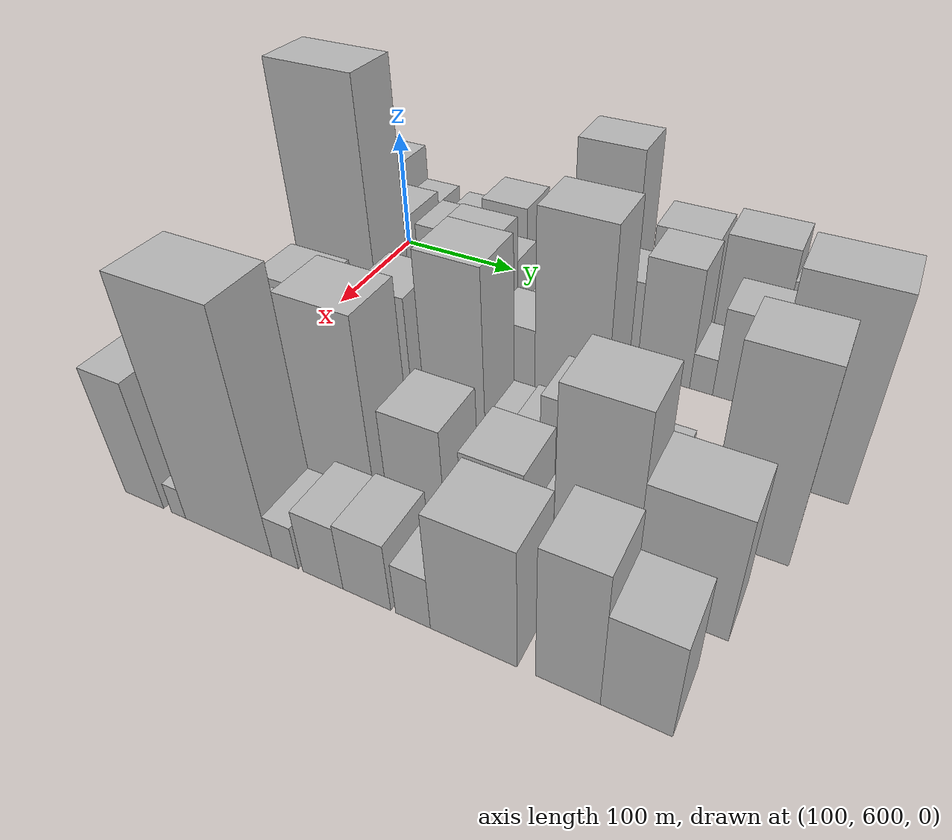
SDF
<sdf version="1.6">
 <world name="default">
  <model name="building_41">
   <static>1</static>
   <pose>100.0000 587.2053 0 0.000000 0.000000 0.000000</pose>
   <link name="link">
    <pose>0 0 42.00 0 0 0</pose>
    <collision name="collision"><geometry><box><size>40.0000 46.4006 84.0000</size></box></geometry></collision>
    <visual name="visual">
     <cast_shadows>0</cast_shadows>
     <geometry><box><size>40.0000 46.4006 84.0000</size></box></geometry>
     <material>
      <script>
       <uri>model://HANNAS_wall/materials/scripts</uri>
       <uri>model://HANNAS_wall/materials/textures</uri>
       <name>vrc/HANNAS_wall</name>
      </script>
     </material>
    </visual>
   </link>
  </model>
  <model name="building_42">
   <static>1</static>
   <pose>100.0000 625.5312 0 0.000000 0.000000 0.000000</pose>
   <link name="link">
    <pose>0 0 27.00 0 0 0</pose>
    <collision name="collision"><geometry><box><size>40.0000 30.2512 54.0000</size></box></geometry></collision>
    <visual name="visual">
     <cast_shadows>0</cast_shadows>
     <geometry><box><size>40.0000 30.2512 54.0000</size></box></geometry>
     <material>
      <script>
       <uri>model://HANNAS_wall/materials/scripts</uri>
       <uri>model://HANNAS_wall/materials/textures</uri>
       <name>vrc/HANNAS_wall</name>
      </script>
     </material>
    </visual>
   </link>
  </model>
  <model name="building_43">
   <static>1</static>
   <pose>100.0000 645.5168 0 0.000000 0.000000 0.000000</pose>
   <link name="link">
    <pose>0 0 12.00 0 0 0</pose>
    <collision name="collision"><geometry><box><size>40.0000 9.7201 24.0000</size></box></geometry></collision>
    <visual name="visual">
     <cast_shadows>0</cast_shadows>
     <geometry><box><size>40.0000 9.7201 24.0000</size></box></geometry>
     <material>
      <script>
       <uri>model://HANNAS_wall/materials/scripts</uri>
       <uri>model://HANNAS_wall/materials/textures</uri>
       <name>vrc/HANNAS_wall</name>
      </script>
     </material>
    </visual>
   </link>
  </model>
  <model name="building_44">
   <static>1</static>
   <pose>100.0000 664.0462 0 0.000000 0.000000 0.000000</pose>
   <link name="link">
    <pose>0 0 25.50 0 0 0</pose>
    <collision name="collision"><geometry><box><size>40.0000 27.3386 51.0000</size></box></geometry></collision>
    <visual name="visual">
     <cast_shadows>0</cast_shadows>
     <geometry><box><size>40.0000 27.3386 51.0000</size></box></geometry>
     <material>
      <script>
       <uri>model://HANNAS_wall/materials/scripts</uri>
       <uri>model://HANNAS_wall/materials/textures</uri>
       <name>vrc/HANNAS_wall</name>
      </script>
     </material>
    </visual>
   </link>
  </model>
  <model name="building_45">
   <static>1</static>
   <pose>100.0000 703.0734 0 0.000000 0.000000 0.000000</pose>
   <link name="link">
    <pose>0 0 36.00 0 0 0</pose>
    <collision name="collision"><geometry><box><size>40.0000 38.7160 72.0000</size></box></geometry></collision>
    <visual name="visual">
     <cast_shadows>0</cast_shadows>
     <geometry><box><size>40.0000 38.7160 72.0000</size></box></geometry>
     <material>
      <script>
       <uri>model://HANNAS_wall/materials/scripts</uri>
       <uri>model://HANNAS_wall/materials/textures</uri>
       <name>vrc/HANNAS_wall</name>
      </script>
     </material>
    </visual>
   </link>
  </model>
  <model name="building_46">
   <static>1</static>
   <pose>100.0000 727.5626 0 0.000000 0.000000 0.000000</pose>
   <link name="link">
    <pose>0 0 10.50 0 0 0</pose>
    <collision name="collision"><geometry><box><size>40.0000 10.2623 21.0000</size></box></geometry></collision>
    <visual name="visual">
     <cast_shadows>0</cast_shadows>
     <geometry><box><size>40.0000 10.2623 21.0000</size></box></geometry>
     <material>
      <script>
       <uri>model://HANNAS_wall/materials/scripts</uri>
       <uri>model://HANNAS_wall/materials/textures</uri>
       <name>vrc/HANNAS_wall</name>
      </script>
     </material>
    </visual>
   </link>
  </model>
  <model name="building_47">
   <static>1</static>
   <pose>100.0000 746.8520 0 0.000000 0.000000 0.000000</pose>
   <link name="link">
    <pose>0 0 24.00 0 0 0</pose>
    <collision name="collision"><geometry><box><size>40.0000 28.3164 48.0000</size></box></geometry></collision>
    <visual name="visual">
     <cast_shadows>0</cast_shadows>
     <geometry><box><size>40.0000 28.3164 48.0000</size></box></geometry>
     <material>
      <script>
       <uri>model://HANNAS_wall/materials/scripts</uri>
       <uri>model://HANNAS_wall/materials/textures</uri>
       <name>vrc/HANNAS_wall</name>
      </script>
     </material>
    </visual>
   </link>
  </model>
  <model name="building_48">
   <static>1</static>
   <pose>100.0000 786.0104 0 0.000000 0.000000 0.000000</pose>
   <link name="link">
    <pose>0 0 69.00 0 0 0</pose>
    <collision name="collision"><geometry><box><size>40.0000 50.0005 138.0000</size></box></geometry></collision>
    <visual name="visual">
     <cast_shadows>0</cast_shadows>
     <geometry><box><size>40.0000 50.0005 138.0000</size></box></geometry>
     <material>
      <script>
       <uri>model://HANNAS_wall/materials/scripts</uri>
       <uri>model://HANNAS_wall/materials/textures</uri>
       <name>vrc/HANNAS_wall</name>
      </script>
     </material>
    </visual>
   </link>
  </model>
  <model name="building_49">
   <static>1</static>
   <pose>100.0000 820.0945 0 0.000000 0.000000 0.000000</pose>
   <link name="link">
    <pose>0 0 7.50 0 0 0</pose>
    <collision name="collision"><geometry><box><size>40.0000 6.1677 15.0000</size></box></geometry></collision>
    <visual name="visual">
     <cast_shadows>0</cast_shadows>
     <geometry><box><size>40.0000 6.1677 15.0000</size></box></geometry>
     <material>
      <script>
       <uri>model://HANNAS_wall/materials/scripts</uri>
       <uri>model://HANNAS_wall/materials/textures</uri>
       <name>vrc/HANNAS_wall</name>
      </script>
     </material>
    </visual>
   </link>
  </model>
  <model name="building_50">
   <static>1</static>
   <pose>100.0000 846.4043 0 0.000000 0.000000 0.000000</pose>
   <link name="link">
    <pose>0 0 42.00 0 0 0</pose>
    <collision name="collision"><geometry><box><size>40.0000 46.4519 84.0000</size></box></geometry></collision>
    <visual name="visual">
     <cast_shadows>0</cast_shadows>
     <geometry><box><size>40.0000 46.4519 84.0000</size></box></geometry>
     <material>
      <script>
       <uri>model://HANNAS_wall/materials/scripts</uri>
       <uri>model://HANNAS_wall/materials/textures</uri>
       <name>vrc/HANNAS_wall</name>
      </script>
     </material>
    </visual>
   </link>
  </model>
  <model name="building_51">
   <static>1</static>
   <pose>100.0000 898.2905 0 0.000000 0.000000 0.000000</pose>
   <link name="link">
    <pose>0 0 45.00 0 0 0</pose>
    <collision name="collision"><geometry><box><size>40.0000 49.3204 90.0000</size></box></geometry></collision>
    <visual name="visual">
     <cast_shadows>0</cast_shadows>
     <geometry><box><size>40.0000 49.3204 90.0000</size></box></geometry>
     <material>
      <script>
       <uri>model://HANNAS_wall/materials/scripts</uri>
       <uri>model://HANNAS_wall/materials/textures</uri>
       <name>vrc/HANNAS_wall</name>
      </script>
     </material>
    </visual>
   </link>
  </model>
  <model name="building_52">
   <static>1</static>
   <pose>100.0000 941.9856 0 0.000000 0.000000 0.000000</pose>
   <link name="link">
    <pose>0 0 33.00 0 0 0</pose>
    <collision name="collision"><geometry><box><size>40.0000 38.0699 66.0000</size></box></geometry></collision>
    <visual name="visual">
     <cast_shadows>0</cast_shadows>
     <geometry><box><size>40.0000 38.0699 66.0000</size></box></geometry>
     <material>
      <script>
       <uri>model://HANNAS_wall/materials/scripts</uri>
       <uri>model://HANNAS_wall/materials/textures</uri>
       <name>vrc/HANNAS_wall</name>
      </script>
     </material>
    </visual>
   </link>
  </model>
  <model name="building_102">
   <static>1</static>
   <pose>160.0000 592.9886 0 0.000000 0.000000 0.000000</pose>
   <link name="link">
    <pose>0 0 63.00 0 0 0</pose>
    <collision name="collision"><geometry><box><size>40.0000 46.2979 126.0000</size></box></geometry></collision>
    <visual name="visual">
     <cast_shadows>0</cast_shadows>
     <geometry><box><size>40.0000 46.2979 126.0000</size></box></geometry>
     <material>
      <script>
       <uri>model://HANNAS_wall/materials/scripts</uri>
       <uri>model://HANNAS_wall/materials/textures</uri>
       <name>vrc/HANNAS_wall</name>
      </script>
     </material>
    </visual>
   </link>
  </model>
  <model name="building_103">
   <static>1</static>
   <pose>160.0000 636.7119 0 0.000000 0.000000 0.000000</pose>
   <link name="link">
    <pose>0 0 40.50 0 0 0</pose>
    <collision name="collision"><geometry><box><size>40.0000 41.1486 81.0000</size></box></geometry></collision>
    <visual name="visual">
     <cast_shadows>0</cast_shadows>
     <geometry><box><size>40.0000 41.1486 81.0000</size></box></geometry>
     <material>
      <script>
       <uri>model://HANNAS_wall/materials/scripts</uri>
       <uri>model://HANNAS_wall/materials/textures</uri>
       <name>vrc/HANNAS_wall</name>
      </script>
     </material>
    </visual>
   </link>
  </model>
  <model name="building_104">
   <static>1</static>
   <pose>160.0000 683.0461 0 0.000000 0.000000 0.000000</pose>
   <link name="link">
    <pose>0 0 37.50 0 0 0</pose>
    <collision name="collision"><geometry><box><size>40.0000 43.5198 75.0000</size></box></geometry></collision>
    <visual name="visual">
     <cast_shadows>0</cast_shadows>
     <geometry><box><size>40.0000 43.5198 75.0000</size></box></geometry>
     <material>
      <script>
       <uri>model://HANNAS_wall/materials/scripts</uri>
       <uri>model://HANNAS_wall/materials/textures</uri>
       <name>vrc/HANNAS_wall</name>
      </script>
     </material>
    </visual>
   </link>
  </model>
  <model name="building_105">
   <static>1</static>
   <pose>160.0000 722.4778 0 0.000000 0.000000 0.000000</pose>
   <link name="link">
    <pose>0 0 30.00 0 0 0</pose>
    <collision name="collision"><geometry><box><size>40.0000 35.3437 60.0000</size></box></geometry></collision>
    <visual name="visual">
     <cast_shadows>0</cast_shadows>
     <geometry><box><size>40.0000 35.3437 60.0000</size></box></geometry>
     <material>
      <script>
       <uri>model://HANNAS_wall/materials/scripts</uri>
       <uri>model://HANNAS_wall/materials/textures</uri>
       <name>vrc/HANNAS_wall</name>
      </script>
     </material>
    </visual>
   </link>
  </model>
  <model name="building_106">
   <static>1</static>
   <pose>160.0000 751.8383 0 0.000000 0.000000 0.000000</pose>
   <link name="link">
    <pose>0 0 13.50 0 0 0</pose>
    <collision name="collision"><geometry><box><size>40.0000 13.3772 27.0000</size></box></geometry></collision>
    <visual name="visual">
     <cast_shadows>0</cast_shadows>
     <geometry><box><size>40.0000 13.3772 27.0000</size></box></geometry>
     <material>
      <script>
       <uri>model://HANNAS_wall/materials/scripts</uri>
       <uri>model://HANNAS_wall/materials/textures</uri>
       <name>vrc/HANNAS_wall</name>
      </script>
     </material>
    </visual>
   </link>
  </model>
  <model name="building_107">
   <static>1</static>
   <pose>160.0000 779.0751 0 0.000000 0.000000 0.000000</pose>
   <link name="link">
    <pose>0 0 27.00 0 0 0</pose>
    <collision name="collision"><geometry><box><size>40.0000 31.0965 54.0000</size></box></geometry></collision>
    <visual name="visual">
     <cast_shadows>0</cast_shadows>
     <geometry><box><size>40.0000 31.0965 54.0000</size></box></geometry>
     <material>
      <script>
       <uri>model://HANNAS_wall/materials/scripts</uri>
       <uri>model://HANNAS_wall/materials/textures</uri>
       <name>vrc/HANNAS_wall</name>
      </script>
     </material>
    </visual>
   </link>
  </model>
  <model name="building_108">
   <static>1</static>
   <pose>160.0000 815.8469 0 0.000000 0.000000 0.000000</pose>
   <link name="link">
    <pose>0 0 37.50 0 0 0</pose>
    <collision name="collision"><geometry><box><size>40.0000 42.4470 75.0000</size></box></geometry></collision>
    <visual name="visual">
     <cast_shadows>0</cast_shadows>
     <geometry><box><size>40.0000 42.4470 75.0000</size></box></geometry>
     <material>
      <script>
       <uri>model://HANNAS_wall/materials/scripts</uri>
       <uri>model://HANNAS_wall/materials/textures</uri>
       <name>vrc/HANNAS_wall</name>
      </script>
     </material>
    </visual>
   </link>
  </model>
  <model name="building_109">
   <static>1</static>
   <pose>160.0000 856.2392 0 0.000000 0.000000 0.000000</pose>
   <link name="link">
    <pose>0 0 48.00 0 0 0</pose>
    <collision name="collision"><geometry><box><size>40.0000 38.3378 96.0000</size></box></geometry></collision>
    <visual name="visual">
     <cast_shadows>0</cast_shadows>
     <geometry><box><size>40.0000 38.3378 96.0000</size></box></geometry>
     <material>
      <script>
       <uri>model://HANNAS_wall/materials/scripts</uri>
       <uri>model://HANNAS_wall/materials/textures</uri>
       <name>vrc/HANNAS_wall</name>
      </script>
     </material>
    </visual>
   </link>
  </model>
  <model name="building_110">
   <static>1</static>
   <pose>160.0000 883.5119 0 0.000000 0.000000 0.000000</pose>
   <link name="link">
    <pose>0 0 15.00 0 0 0</pose>
    <collision name="collision"><geometry><box><size>40.0000 16.2075 30.0000</size></box></geometry></collision>
    <visual name="visual">
     <cast_shadows>0</cast_shadows>
     <geometry><box><size>40.0000 16.2075 30.0000</size></box></geometry>
     <material>
      <script>
       <uri>model://HANNAS_wall/materials/scripts</uri>
       <uri>model://HANNAS_wall/materials/textures</uri>
       <name>vrc/HANNAS_wall</name>
      </script>
     </material>
    </visual>
   </link>
  </model>
  <model name="building_111">
   <static>1</static>
   <pose>160.0000 911.6833 0 0.000000 0.000000 0.000000</pose>
   <link name="link">
    <pose>0 0 36.00 0 0 0</pose>
    <collision name="collision"><geometry><box><size>40.0000 40.1352 72.0000</size></box></geometry></collision>
    <visual name="visual">
     <cast_shadows>0</cast_shadows>
     <geometry><box><size>40.0000 40.1352 72.0000</size></box></geometry>
     <material>
      <script>
       <uri>model://HANNAS_wall/materials/scripts</uri>
       <uri>model://HANNAS_wall/materials/textures</uri>
       <name>vrc/HANNAS_wall</name>
      </script>
     </material>
    </visual>
   </link>
  </model>
  <model name="building_112">
   <static>1</static>
   <pose>160.0000 945.2777 0 0.000000 0.000000 0.000000</pose>
   <link name="link">
    <pose>0 0 25.50 0 0 0</pose>
    <collision name="collision"><geometry><box><size>40.0000 27.0537 51.0000</size></box></geometry></collision>
    <visual name="visual">
     <cast_shadows>0</cast_shadows>
     <geometry><box><size>40.0000 27.0537 51.0000</size></box></geometry>
     <material>
      <script>
       <uri>model://HANNAS_wall/materials/scripts</uri>
       <uri>model://HANNAS_wall/materials/textures</uri>
       <name>vrc/HANNAS_wall</name>
      </script>
     </material>
    </visual>
   </link>
  </model>
  <model name="building_160">
   <static>1</static>
   <pose>220.0000 588.3846 0 0.000000 0.000000 0.000000</pose>
   <link name="link">
    <pose>0 0 15.00 0 0 0</pose>
    <collision name="collision"><geometry><box><size>40.0000 16.3079 30.0000</size></box></geometry></collision>
    <visual name="visual">
     <cast_shadows>0</cast_shadows>
     <geometry><box><size>40.0000 16.3079 30.0000</size></box></geometry>
     <material>
      <script>
       <uri>model://HANNAS_wall/materials/scripts</uri>
       <uri>model://HANNAS_wall/materials/textures</uri>
       <name>vrc/HANNAS_wall</name>
      </script>
     </material>
    </visual>
   </link>
  </model>
  <model name="building_161">
   <static>1</static>
   <pose>220.0000 633.6879 0 0.000000 0.000000 0.000000</pose>
   <link name="link">
    <pose>0 0 103.50 0 0 0</pose>
    <collision name="collision"><geometry><box><size>40.0000 64.2986 207.0000</size></box></geometry></collision>
    <visual name="visual">
     <cast_shadows>0</cast_shadows>
     <geometry><box><size>40.0000 64.2986 207.0000</size></box></geometry>
     <material>
      <script>
       <uri>model://HANNAS_wall/materials/scripts</uri>
       <uri>model://HANNAS_wall/materials/textures</uri>
       <name>vrc/HANNAS_wall</name>
      </script>
     </material>
    </visual>
   </link>
  </model>
  <model name="building_162">
   <static>1</static>
   <pose>220.0000 670.8033 0 0.000000 0.000000 0.000000</pose>
   <link name="link">
    <pose>0 0 12.00 0 0 0</pose>
    <collision name="collision"><geometry><box><size>40.0000 9.9323 24.0000</size></box></geometry></collision>
    <visual name="visual">
     <cast_shadows>0</cast_shadows>
     <geometry><box><size>40.0000 9.9323 24.0000</size></box></geometry>
     <material>
      <script>
       <uri>model://HANNAS_wall/materials/scripts</uri>
       <uri>model://HANNAS_wall/materials/textures</uri>
       <name>vrc/HANNAS_wall</name>
      </script>
     </material>
    </visual>
   </link>
  </model>
  <model name="building_163">
   <static>1</static>
   <pose>220.0000 697.5514 0 0.000000 0.000000 0.000000</pose>
   <link name="link">
    <pose>0 0 28.50 0 0 0</pose>
    <collision name="collision"><geometry><box><size>40.0000 31.5639 57.0000</size></box></geometry></collision>
    <visual name="visual">
     <cast_shadows>0</cast_shadows>
     <geometry><box><size>40.0000 31.5639 57.0000</size></box></geometry>
     <material>
      <script>
       <uri>model://HANNAS_wall/materials/scripts</uri>
       <uri>model://HANNAS_wall/materials/textures</uri>
       <name>vrc/HANNAS_wall</name>
      </script>
     </material>
    </visual>
   </link>
  </model>
  <model name="building_164">
   <static>1</static>
   <pose>220.0000 733.7500 0 0.000000 0.000000 0.000000</pose>
   <link name="link">
    <pose>0 0 57.00 0 0 0</pose>
    <collision name="collision"><geometry><box><size>40.0000 40.8334 114.0000</size></box></geometry></collision>
    <visual name="visual">
     <cast_shadows>0</cast_shadows>
     <geometry><box><size>40.0000 40.8334 114.0000</size></box></geometry>
     <material>
      <script>
       <uri>model://HANNAS_wall/materials/scripts</uri>
       <uri>model://HANNAS_wall/materials/textures</uri>
       <name>vrc/HANNAS_wall</name>
      </script>
     </material>
    </visual>
   </link>
  </model>
  <model name="building_165">
   <static>1</static>
   <pose>220.0000 770.1458 0 0.000000 0.000000 0.000000</pose>
   <link name="link">
    <pose>0 0 30.00 0 0 0</pose>
    <collision name="collision"><geometry><box><size>40.0000 31.9581 60.0000</size></box></geometry></collision>
    <visual name="visual">
     <cast_shadows>0</cast_shadows>
     <geometry><box><size>40.0000 31.9581 60.0000</size></box></geometry>
     <material>
      <script>
       <uri>model://HANNAS_wall/materials/scripts</uri>
       <uri>model://HANNAS_wall/materials/textures</uri>
       <name>vrc/HANNAS_wall</name>
      </script>
     </material>
    </visual>
   </link>
  </model>
  <model name="building_166">
   <static>1</static>
   <pose>220.0000 811.6166 0 0.000000 0.000000 0.000000</pose>
   <link name="link">
    <pose>0 0 75.00 0 0 0</pose>
    <collision name="collision"><geometry><box><size>40.0000 50.9834 150.0000</size></box></geometry></collision>
    <visual name="visual">
     <cast_shadows>0</cast_shadows>
     <geometry><box><size>40.0000 50.9834 150.0000</size></box></geometry>
     <material>
      <script>
       <uri>model://HANNAS_wall/materials/scripts</uri>
       <uri>model://HANNAS_wall/materials/textures</uri>
       <name>vrc/HANNAS_wall</name>
      </script>
     </material>
    </visual>
   </link>
  </model>
  <model name="building_167">
   <static>1</static>
   <pose>220.0000 840.6278 0 0.000000 0.000000 0.000000</pose>
   <link name="link">
    <pose>0 0 7.50 0 0 0</pose>
    <collision name="collision"><geometry><box><size>40.0000 7.0390 15.0000</size></box></geometry></collision>
    <visual name="visual">
     <cast_shadows>0</cast_shadows>
     <geometry><box><size>40.0000 7.0390 15.0000</size></box></geometry>
     <material>
      <script>
       <uri>model://HANNAS_wall/materials/scripts</uri>
       <uri>model://HANNAS_wall/materials/textures</uri>
       <name>vrc/HANNAS_wall</name>
      </script>
     </material>
    </visual>
   </link>
  </model>
  <model name="building_168">
   <static>1</static>
   <pose>220.0000 963.1942 0 0.000000 0.000000 0.000000</pose>
   <link name="link">
    <pose>0 0 75.00 0 0 0</pose>
    <collision name="collision"><geometry><box><size>40.0000 55.3646 150.0000</size></box></geometry></collision>
    <visual name="visual">
     <cast_shadows>0</cast_shadows>
     <geometry><box><size>40.0000 55.3646 150.0000</size></box></geometry>
     <material>
      <script>
       <uri>model://HANNAS_wall/materials/scripts</uri>
       <uri>model://HANNAS_wall/materials/textures</uri>
       <name>vrc/HANNAS_wall</name>
      </script>
     </material>
    </visual>
   </link>
  </model>
  <model name="building_211">
   <static>1</static>
   <pose>280.0000 603.7996 0 0.000000 0.000000 0.000000</pose>
   <link name="link">
    <pose>0 0 15.00 0 0 0</pose>
    <collision name="collision"><geometry><box><size>40.0000 17.2301 30.0000</size></box></geometry></collision>
    <visual name="visual">
     <cast_shadows>0</cast_shadows>
     <geometry><box><size>40.0000 17.2301 30.0000</size></box></geometry>
     <material>
      <script>
       <uri>model://HANNAS_wall/materials/scripts</uri>
       <uri>model://HANNAS_wall/materials/textures</uri>
       <name>vrc/HANNAS_wall</name>
      </script>
     </material>
    </visual>
   </link>
  </model>
  <model name="building_212">
   <static>1</static>
   <pose>280.0000 639.2503 0 0.000000 0.000000 0.000000</pose>
   <link name="link">
    <pose>0 0 45.00 0 0 0</pose>
    <collision name="collision"><geometry><box><size>40.0000 45.6713 90.0000</size></box></geometry></collision>
    <visual name="visual">
     <cast_shadows>0</cast_shadows>
     <geometry><box><size>40.0000 45.6713 90.0000</size></box></geometry>
     <material>
      <script>
       <uri>model://HANNAS_wall/materials/scripts</uri>
       <uri>model://HANNAS_wall/materials/textures</uri>
       <name>vrc/HANNAS_wall</name>
      </script>
     </material>
    </visual>
   </link>
  </model>
  <model name="building_213">
   <static>1</static>
   <pose>280.0000 674.8148 0 0.000000 0.000000 0.000000</pose>
   <link name="link">
    <pose>0 0 7.50 0 0 0</pose>
    <collision name="collision"><geometry><box><size>40.0000 7.4578 15.0000</size></box></geometry></collision>
    <visual name="visual">
     <cast_shadows>0</cast_shadows>
     <geometry><box><size>40.0000 7.4578 15.0000</size></box></geometry>
     <material>
      <script>
       <uri>model://HANNAS_wall/materials/scripts</uri>
       <uri>model://HANNAS_wall/materials/textures</uri>
       <name>vrc/HANNAS_wall</name>
      </script>
     </material>
    </visual>
   </link>
  </model>
  <model name="building_214">
   <static>1</static>
   <pose>280.0000 689.2759 0 0.000000 0.000000 0.000000</pose>
   <link name="link">
    <pose>0 0 12.00 0 0 0</pose>
    <collision name="collision"><geometry><box><size>40.0000 11.4644 24.0000</size></box></geometry></collision>
    <visual name="visual">
     <cast_shadows>0</cast_shadows>
     <geometry><box><size>40.0000 11.4644 24.0000</size></box></geometry>
     <material>
      <script>
       <uri>model://HANNAS_wall/materials/scripts</uri>
       <uri>model://HANNAS_wall/materials/textures</uri>
       <name>vrc/HANNAS_wall</name>
      </script>
     </material>
    </visual>
   </link>
  </model>
  <model name="building_215">
   <static>1</static>
   <pose>280.0000 712.3663 0 0.000000 0.000000 0.000000</pose>
   <link name="link">
    <pose>0 0 52.50 0 0 0</pose>
    <collision name="collision"><geometry><box><size>40.0000 34.7164 105.0000</size></box></geometry></collision>
    <visual name="visual">
     <cast_shadows>0</cast_shadows>
     <geometry><box><size>40.0000 34.7164 105.0000</size></box></geometry>
     <material>
      <script>
       <uri>model://HANNAS_wall/materials/scripts</uri>
       <uri>model://HANNAS_wall/materials/textures</uri>
       <name>vrc/HANNAS_wall</name>
      </script>
     </material>
    </visual>
   </link>
  </model>
  <model name="building_216">
   <static>1</static>
   <pose>280.0000 734.1529 0 0.000000 0.000000 0.000000</pose>
   <link name="link">
    <pose>0 0 10.50 0 0 0</pose>
    <collision name="collision"><geometry><box><size>40.0000 8.8568 21.0000</size></box></geometry></collision>
    <visual name="visual">
     <cast_shadows>0</cast_shadows>
     <geometry><box><size>40.0000 8.8568 21.0000</size></box></geometry>
     <material>
      <script>
       <uri>model://HANNAS_wall/materials/scripts</uri>
       <uri>model://HANNAS_wall/materials/textures</uri>
       <name>vrc/HANNAS_wall</name>
      </script>
     </material>
    </visual>
   </link>
  </model>
  <model name="building_217">
   <static>1</static>
   <pose>280.0000 759.8941 0 0.000000 0.000000 0.000000</pose>
   <link name="link">
    <pose>0 0 70.50 0 0 0</pose>
    <collision name="collision"><geometry><box><size>40.0000 42.6255 141.0000</size></box></geometry></collision>
    <visual name="visual">
     <cast_shadows>0</cast_shadows>
     <geometry><box><size>40.0000 42.6255 141.0000</size></box></geometry>
     <material>
      <script>
       <uri>model://HANNAS_wall/materials/scripts</uri>
       <uri>model://HANNAS_wall/materials/textures</uri>
       <name>vrc/HANNAS_wall</name>
      </script>
     </material>
    </visual>
   </link>
  </model>
  <model name="building_218">
   <static>1</static>
   <pose>280.0000 789.8733 0 0.000000 0.000000 0.000000</pose>
   <link name="link">
    <pose>0 0 16.50 0 0 0</pose>
    <collision name="collision"><geometry><box><size>40.0000 17.3330 33.0000</size></box></geometry></collision>
    <visual name="visual">
     <cast_shadows>0</cast_shadows>
     <geometry><box><size>40.0000 17.3330 33.0000</size></box></geometry>
     <material>
      <script>
       <uri>model://HANNAS_wall/materials/scripts</uri>
       <uri>model://HANNAS_wall/materials/textures</uri>
       <name>vrc/HANNAS_wall</name>
      </script>
     </material>
    </visual>
   </link>
  </model>
  <model name="building_219">
   <static>1</static>
   <pose>280.0000 808.2654 0 0.000000 0.000000 0.000000</pose>
   <link name="link">
    <pose>0 0 18.00 0 0 0</pose>
    <collision name="collision"><geometry><box><size>40.0000 19.4511 36.0000</size></box></geometry></collision>
    <visual name="visual">
     <cast_shadows>0</cast_shadows>
     <geometry><box><size>40.0000 19.4511 36.0000</size></box></geometry>
     <material>
      <script>
       <uri>model://HANNAS_wall/materials/scripts</uri>
       <uri>model://HANNAS_wall/materials/textures</uri>
       <name>vrc/HANNAS_wall</name>
      </script>
     </material>
    </visual>
   </link>
  </model>
  <model name="building_220">
   <static>1</static>
   <pose>280.0000 835.8054 0 0.000000 0.000000 0.000000</pose>
   <link name="link">
    <pose>0 0 33.00 0 0 0</pose>
    <collision name="collision"><geometry><box><size>40.0000 35.6289 66.0000</size></box></geometry></collision>
    <visual name="visual">
     <cast_shadows>0</cast_shadows>
     <geometry><box><size>40.0000 35.6289 66.0000</size></box></geometry>
     <material>
      <script>
       <uri>model://HANNAS_wall/materials/scripts</uri>
       <uri>model://HANNAS_wall/materials/textures</uri>
       <name>vrc/HANNAS_wall</name>
      </script>
     </material>
    </visual>
   </link>
  </model>
  <model name="building_221">
   <static>1</static>
   <pose>280.0000 864.6109 0 0.000000 0.000000 0.000000</pose>
   <link name="link">
    <pose>0 0 21.00 0 0 0</pose>
    <collision name="collision"><geometry><box><size>40.0000 21.9822 42.0000</size></box></geometry></collision>
    <visual name="visual">
     <cast_shadows>0</cast_shadows>
     <geometry><box><size>40.0000 21.9822 42.0000</size></box></geometry>
     <material>
      <script>
       <uri>model://HANNAS_wall/materials/scripts</uri>
       <uri>model://HANNAS_wall/materials/textures</uri>
       <name>vrc/HANNAS_wall</name>
      </script>
     </material>
    </visual>
   </link>
  </model>
  <model name="building_222">
   <static>1</static>
   <pose>280.0000 890.4169 0 0.000000 0.000000 0.000000</pose>
   <link name="link">
    <pose>0 0 19.50 0 0 0</pose>
    <collision name="collision"><geometry><box><size>40.0000 19.6298 39.0000</size></box></geometry></collision>
    <visual name="visual">
     <cast_shadows>0</cast_shadows>
     <geometry><box><size>40.0000 19.6298 39.0000</size></box></geometry>
     <material>
      <script>
       <uri>model://HANNAS_wall/materials/scripts</uri>
       <uri>model://HANNAS_wall/materials/textures</uri>
       <name>vrc/HANNAS_wall</name>
      </script>
     </material>
    </visual>
   </link>
  </model>
  <model name="building_223">
   <static>1</static>
   <pose>280.0000 910.2996 0 0.000000 0.000000 0.000000</pose>
   <link name="link">
    <pose>0 0 12.00 0 0 0</pose>
    <collision name="collision"><geometry><box><size>40.0000 10.1356 24.0000</size></box></geometry></collision>
    <visual name="visual">
     <cast_shadows>0</cast_shadows>
     <geometry><box><size>40.0000 10.1356 24.0000</size></box></geometry>
     <material>
      <script>
       <uri>model://HANNAS_wall/materials/scripts</uri>
       <uri>model://HANNAS_wall/materials/textures</uri>
       <name>vrc/HANNAS_wall</name>
      </script>
     </material>
    </visual>
   </link>
  </model>
  <model name="building_224">
   <static>1</static>
   <pose>280.0000 918.8472 0 0.000000 0.000000 0.000000</pose>
   <link name="link">
    <pose>0 0 7.50 0 0 0</pose>
    <collision name="collision"><geometry><box><size>40.0000 6.9596 15.0000</size></box></geometry></collision>
    <visual name="visual">
     <cast_shadows>0</cast_shadows>
     <geometry><box><size>40.0000 6.9596 15.0000</size></box></geometry>
     <material>
      <script>
       <uri>model://HANNAS_wall/materials/scripts</uri>
       <uri>model://HANNAS_wall/materials/textures</uri>
       <name>vrc/HANNAS_wall</name>
      </script>
     </material>
    </visual>
   </link>
  </model>
  <model name="building_225">
   <static>1</static>
   <pose>280.0000 945.6553 0 0.000000 0.000000 0.000000</pose>
   <link name="link">
    <pose>0 0 70.50 0 0 0</pose>
    <collision name="collision"><geometry><box><size>40.0000 46.6565 141.0000</size></box></geometry></collision>
    <visual name="visual">
     <cast_shadows>0</cast_shadows>
     <geometry><box><size>40.0000 46.6565 141.0000</size></box></geometry>
     <material>
      <script>
       <uri>model://HANNAS_wall/materials/scripts</uri>
       <uri>model://HANNAS_wall/materials/textures</uri>
       <name>vrc/HANNAS_wall</name>
      </script>
     </material>
    </visual>
   </link>
  </model>
  <model name="building_271">
   <static>1</static>
   <pose>340.0000 591.1337 0 0.000000 0.000000 0.000000</pose>
   <link name="link">
    <pose>0 0 15.00 0 0 0</pose>
    <collision name="collision"><geometry><box><size>40.0000 16.1212 30.0000</size></box></geometry></collision>
    <visual name="visual">
     <cast_shadows>0</cast_shadows>
     <geometry><box><size>40.0000 16.1212 30.0000</size></box></geometry>
     <material>
      <script>
       <uri>model://HANNAS_wall/materials/scripts</uri>
       <uri>model://HANNAS_wall/materials/textures</uri>
       <name>vrc/HANNAS_wall</name>
      </script>
     </material>
    </visual>
   </link>
  </model>
  <model name="building_272">
   <static>1</static>
   <pose>340.0000 625.2258 0 0.000000 0.000000 0.000000</pose>
   <link name="link">
    <pose>0 0 43.50 0 0 0</pose>
    <collision name="collision"><geometry><box><size>40.0000 52.0631 87.0000</size></box></geometry></collision>
    <visual name="visual">
     <cast_shadows>0</cast_shadows>
     <geometry><box><size>40.0000 52.0631 87.0000</size></box></geometry>
     <material>
      <script>
       <uri>model://HANNAS_wall/materials/scripts</uri>
       <uri>model://HANNAS_wall/materials/textures</uri>
       <name>vrc/HANNAS_wall</name>
      </script>
     </material>
    </visual>
   </link>
  </model>
  <model name="building_273">
   <static>1</static>
   <pose>340.0000 670.6038 0 0.000000 0.000000 0.000000</pose>
   <link name="link">
    <pose>0 0 51.00 0 0 0</pose>
    <collision name="collision"><geometry><box><size>40.0000 38.6929 102.0000</size></box></geometry></collision>
    <visual name="visual">
     <cast_shadows>0</cast_shadows>
     <geometry><box><size>40.0000 38.6929 102.0000</size></box></geometry>
     <material>
      <script>
       <uri>model://HANNAS_wall/materials/scripts</uri>
       <uri>model://HANNAS_wall/materials/textures</uri>
       <name>vrc/HANNAS_wall</name>
      </script>
     </material>
    </visual>
   </link>
  </model>
  <model name="building_274">
   <static>1</static>
   <pose>340.0000 714.4538 0 0.000000 0.000000 0.000000</pose>
   <link name="link">
    <pose>0 0 67.50 0 0 0</pose>
    <collision name="collision"><geometry><box><size>40.0000 49.0071 135.0000</size></box></geometry></collision>
    <visual name="visual">
     <cast_shadows>0</cast_shadows>
     <geometry><box><size>40.0000 49.0071 135.0000</size></box></geometry>
     <material>
      <script>
       <uri>model://HANNAS_wall/materials/scripts</uri>
       <uri>model://HANNAS_wall/materials/textures</uri>
       <name>vrc/HANNAS_wall</name>
      </script>
     </material>
    </visual>
   </link>
  </model>
  <model name="building_275">
   <static>1</static>
   <pose>340.0000 767.3684 0 0.000000 0.000000 0.000000</pose>
   <link name="link">
    <pose>0 0 37.50 0 0 0</pose>
    <collision name="collision"><geometry><box><size>40.0000 38.8219 75.0000</size></box></geometry></collision>
    <visual name="visual">
     <cast_shadows>0</cast_shadows>
     <geometry><box><size>40.0000 38.8219 75.0000</size></box></geometry>
     <material>
      <script>
       <uri>model://HANNAS_wall/materials/scripts</uri>
       <uri>model://HANNAS_wall/materials/textures</uri>
       <name>vrc/HANNAS_wall</name>
      </script>
     </material>
    </visual>
   </link>
  </model>
  <model name="building_276">
   <static>1</static>
   <pose>340.0000 790.3495 0 0.000000 0.000000 0.000000</pose>
   <link name="link">
    <pose>0 0 7.50 0 0 0</pose>
    <collision name="collision"><geometry><box><size>40.0000 7.1403 15.0000</size></box></geometry></collision>
    <visual name="visual">
     <cast_shadows>0</cast_shadows>
     <geometry><box><size>40.0000 7.1403 15.0000</size></box></geometry>
     <material>
      <script>
       <uri>model://HANNAS_wall/materials/scripts</uri>
       <uri>model://HANNAS_wall/materials/textures</uri>
       <name>vrc/HANNAS_wall</name>
      </script>
     </material>
    </visual>
   </link>
  </model>
  <model name="building_277">
   <static>1</static>
   <pose>340.0000 817.2803 0 0.000000 0.000000 0.000000</pose>
   <link name="link">
    <pose>0 0 33.00 0 0 0</pose>
    <collision name="collision"><geometry><box><size>40.0000 38.7213 66.0000</size></box></geometry></collision>
    <visual name="visual">
     <cast_shadows>0</cast_shadows>
     <geometry><box><size>40.0000 38.7213 66.0000</size></box></geometry>
     <material>
      <script>
       <uri>model://HANNAS_wall/materials/scripts</uri>
       <uri>model://HANNAS_wall/materials/textures</uri>
       <name>vrc/HANNAS_wall</name>
      </script>
     </material>
    </visual>
   </link>
  </model>
  <model name="building_278">
   <static>1</static>
   <pose>340.0000 845.2867 0 0.000000 0.000000 0.000000</pose>
   <link name="link">
    <pose>0 0 15.00 0 0 0</pose>
    <collision name="collision"><geometry><box><size>40.0000 17.2915 30.0000</size></box></geometry></collision>
    <visual name="visual">
     <cast_shadows>0</cast_shadows>
     <geometry><box><size>40.0000 17.2915 30.0000</size></box></geometry>
     <material>
      <script>
       <uri>model://HANNAS_wall/materials/scripts</uri>
       <uri>model://HANNAS_wall/materials/textures</uri>
       <name>vrc/HANNAS_wall</name>
      </script>
     </material>
    </visual>
   </link>
  </model>
  <model name="building_279">
   <static>1</static>
   <pose>340.0000 876.9766 0 0.000000 0.000000 0.000000</pose>
   <link name="link">
    <pose>0 0 67.50 0 0 0</pose>
    <collision name="collision"><geometry><box><size>40.0000 46.0881 135.0000</size></box></geometry></collision>
    <visual name="visual">
     <cast_shadows>0</cast_shadows>
     <geometry><box><size>40.0000 46.0881 135.0000</size></box></geometry>
     <material>
      <script>
       <uri>model://HANNAS_wall/materials/scripts</uri>
       <uri>model://HANNAS_wall/materials/textures</uri>
       <name>vrc/HANNAS_wall</name>
      </script>
     </material>
    </visual>
   </link>
  </model>
  <model name="building_280">
   <static>1</static>
   <pose>340.0000 925.9002 0 0.000000 0.000000 0.000000</pose>
   <link name="link">
    <pose>0 0 45.00 0 0 0</pose>
    <collision name="collision"><geometry><box><size>40.0000 51.7592 90.0000</size></box></geometry></collision>
    <visual name="visual">
     <cast_shadows>0</cast_shadows>
     <geometry><box><size>40.0000 51.7592 90.0000</size></box></geometry>
     <material>
      <script>
       <uri>model://HANNAS_wall/materials/scripts</uri>
       <uri>model://HANNAS_wall/materials/textures</uri>
       <name>vrc/HANNAS_wall</name>
      </script>
     </material>
    </visual>
   </link>
  </model>
  <model name="building_323">
   <static>1</static>
   <pose>400.0000 615.9358 0 0.000000 0.000000 0.000000</pose>
   <link name="link">
    <pose>0 0 48.00 0 0 0</pose>
    <collision name="collision"><geometry><box><size>40.0000 30.4098 96.0000</size></box></geometry></collision>
    <visual name="visual">
     <cast_shadows>0</cast_shadows>
     <geometry><box><size>40.0000 30.4098 96.0000</size></box></geometry>
     <material>
      <script>
       <uri>model://HANNAS_wall/materials/scripts</uri>
       <uri>model://HANNAS_wall/materials/textures</uri>
       <name>vrc/HANNAS_wall</name>
      </script>
     </material>
    </visual>
   </link>
  </model>
  <model name="building_324">
   <static>1</static>
   <pose>400.0000 642.6149 0 0.000000 0.000000 0.000000</pose>
   <link name="link">
    <pose>0 0 12.00 0 0 0</pose>
    <collision name="collision"><geometry><box><size>40.0000 10.9485 24.0000</size></box></geometry></collision>
    <visual name="visual">
     <cast_shadows>0</cast_shadows>
     <geometry><box><size>40.0000 10.9485 24.0000</size></box></geometry>
     <material>
      <script>
       <uri>model://HANNAS_wall/materials/scripts</uri>
       <uri>model://HANNAS_wall/materials/textures</uri>
       <name>vrc/HANNAS_wall</name>
      </script>
     </material>
    </visual>
   </link>
  </model>
  <model name="building_325">
   <static>1</static>
   <pose>400.0000 679.4111 0 0.000000 0.000000 0.000000</pose>
   <link name="link">
    <pose>0 0 85.50 0 0 0</pose>
    <collision name="collision"><geometry><box><size>40.0000 62.6438 171.0000</size></box></geometry></collision>
    <visual name="visual">
     <cast_shadows>0</cast_shadows>
     <geometry><box><size>40.0000 62.6438 171.0000</size></box></geometry>
     <material>
      <script>
       <uri>model://HANNAS_wall/materials/scripts</uri>
       <uri>model://HANNAS_wall/materials/textures</uri>
       <name>vrc/HANNAS_wall</name>
      </script>
     </material>
    </visual>
   </link>
  </model>
  <model name="building_326">
   <static>1</static>
   <pose>400.0000 719.8112 0 0.000000 0.000000 0.000000</pose>
   <link name="link">
    <pose>0 0 16.50 0 0 0</pose>
    <collision name="collision"><geometry><box><size>40.0000 18.1564 33.0000</size></box></geometry></collision>
    <visual name="visual">
     <cast_shadows>0</cast_shadows>
     <geometry><box><size>40.0000 18.1564 33.0000</size></box></geometry>
     <material>
      <script>
       <uri>model://HANNAS_wall/materials/scripts</uri>
       <uri>model://HANNAS_wall/materials/textures</uri>
       <name>vrc/HANNAS_wall</name>
      </script>
     </material>
    </visual>
   </link>
  </model>
  <model name="building_327">
   <static>1</static>
   <pose>400.0000 745.2089 0 0.000000 0.000000 0.000000</pose>
   <link name="link">
    <pose>0 0 24.00 0 0 0</pose>
    <collision name="collision"><geometry><box><size>40.0000 26.6391 48.0000</size></box></geometry></collision>
    <visual name="visual">
     <cast_shadows>0</cast_shadows>
     <geometry><box><size>40.0000 26.6391 48.0000</size></box></geometry>
     <material>
      <script>
       <uri>model://HANNAS_wall/materials/scripts</uri>
       <uri>model://HANNAS_wall/materials/textures</uri>
       <name>vrc/HANNAS_wall</name>
      </script>
     </material>
    </visual>
   </link>
  </model>
  <model name="building_328">
   <static>1</static>
   <pose>400.0000 773.6140 0 0.000000 0.000000 0.000000</pose>
   <link name="link">
    <pose>0 0 25.50 0 0 0</pose>
    <collision name="collision"><geometry><box><size>40.0000 30.1712 51.0000</size></box></geometry></collision>
    <visual name="visual">
     <cast_shadows>0</cast_shadows>
     <geometry><box><size>40.0000 30.1712 51.0000</size></box></geometry>
     <material>
      <script>
       <uri>model://HANNAS_wall/materials/scripts</uri>
       <uri>model://HANNAS_wall/materials/textures</uri>
       <name>vrc/HANNAS_wall</name>
      </script>
     </material>
    </visual>
   </link>
  </model>
  <model name="building_329">
   <static>1</static>
   <pose>400.0000 802.2067 0 0.000000 0.000000 0.000000</pose>
   <link name="link">
    <pose>0 0 19.50 0 0 0</pose>
    <collision name="collision"><geometry><box><size>40.0000 21.0141 39.0000</size></box></geometry></collision>
    <visual name="visual">
     <cast_shadows>0</cast_shadows>
     <geometry><box><size>40.0000 21.0141 39.0000</size></box></geometry>
     <material>
      <script>
       <uri>model://HANNAS_wall/materials/scripts</uri>
       <uri>model://HANNAS_wall/materials/textures</uri>
       <name>vrc/HANNAS_wall</name>
      </script>
     </material>
    </visual>
   </link>
  </model>
  <model name="building_330">
   <static>1</static>
   <pose>400.0000 837.4381 0 0.000000 0.000000 0.000000</pose>
   <link name="link">
    <pose>0 0 43.50 0 0 0</pose>
    <collision name="collision"><geometry><box><size>40.0000 49.4488 87.0000</size></box></geometry></collision>
    <visual name="visual">
     <cast_shadows>0</cast_shadows>
     <geometry><box><size>40.0000 49.4488 87.0000</size></box></geometry>
     <material>
      <script>
       <uri>model://HANNAS_wall/materials/scripts</uri>
       <uri>model://HANNAS_wall/materials/textures</uri>
       <name>vrc/HANNAS_wall</name>
      </script>
     </material>
    </visual>
   </link>
  </model>
  <model name="building_331">
   <static>1</static>
   <pose>400.0000 889.1548 0 0.000000 0.000000 0.000000</pose>
   <link name="link">
    <pose>0 0 48.00 0 0 0</pose>
    <collision name="collision"><geometry><box><size>40.0000 33.9845 96.0000</size></box></geometry></collision>
    <visual name="visual">
     <cast_shadows>0</cast_shadows>
     <geometry><box><size>40.0000 33.9845 96.0000</size></box></geometry>
     <material>
      <script>
       <uri>model://HANNAS_wall/materials/scripts</uri>
       <uri>model://HANNAS_wall/materials/textures</uri>
       <name>vrc/HANNAS_wall</name>
      </script>
     </material>
    </visual>
   </link>
  </model>
  <model name="building_332">
   <static>1</static>
   <pose>400.0000 924.1164 0 0.000000 0.000000 0.000000</pose>
   <link name="link">
    <pose>0 0 34.50 0 0 0</pose>
    <collision name="collision"><geometry><box><size>40.0000 35.9388 69.0000</size></box></geometry></collision>
    <visual name="visual">
     <cast_shadows>0</cast_shadows>
     <geometry><box><size>40.0000 35.9388 69.0000</size></box></geometry>
     <material>
      <script>
       <uri>model://HANNAS_wall/materials/scripts</uri>
       <uri>model://HANNAS_wall/materials/textures</uri>
       <name>vrc/HANNAS_wall</name>
      </script>
     </material>
    </visual>
   </link>
  </model>
 </world>
</sdf>
